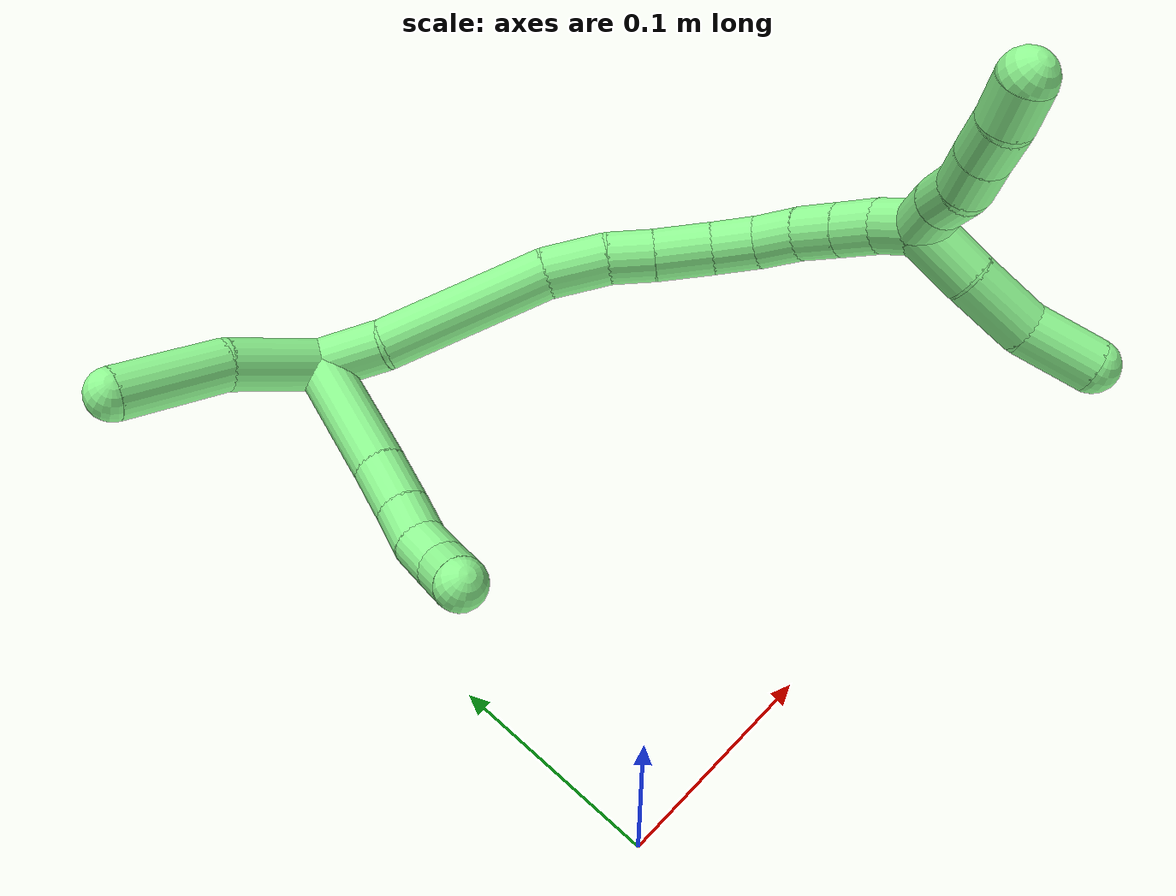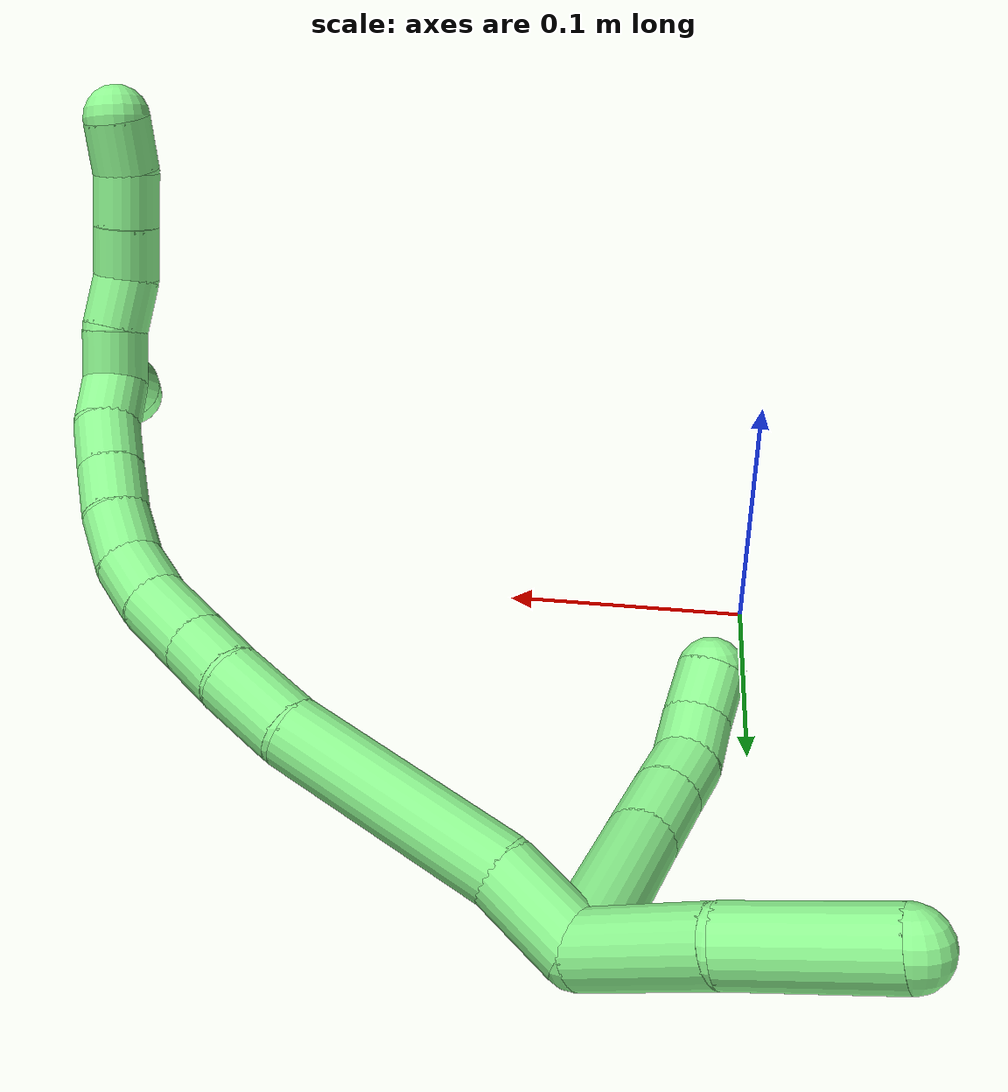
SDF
<sdf version="1.7">
 <world name="default">
  <model name="13">
   <static>0</static>
   <link name="13">
    <collision name="collision-cylinder-e_1_2_8">
     <pose>-0.006195 -0.030461 0.0069 1.34803 -0.195816 -0.1566</pose>
     <geometry><cylinder><radius>0.0125</radius><length>0.063682</length></cylinder></geometry>
     <surface>
      <friction><ode><mu>1.16</mu><mu2>1.16</mu2><slip1>0</slip1><slip2>0</slip2></ode></friction>
      <contact><ode><kp>1e+06</kp><kd>1</kd><max_vel>0</max_vel><min_depth>0.001</min_depth></ode></contact>
     </surface>
    </collision>
    <visual name="visual-cylinder-e_1_2_8">
     <pose>-0.006195 -0.030461 0.0069 1.34803 -0.195816 -0.1566</pose>
     <geometry><cylinder><radius>0.0125</radius><length>0.063682</length></cylinder></geometry>
     <material><ambient>0.564706 0.984314 0.572549 1</ambient></material>
    </visual>
    <collision name="collision-cylinder-e_2_8_9">
     <pose>-0.015603 -0.072869 0.017757 1.25099 -0.249906 -0.180942</pose>
     <geometry><cylinder><radius>0.0125</radius><length>0.025977</length></cylinder></geometry>
     <surface>
      <friction><ode><mu>1.16</mu><mu2>1.16</mu2><slip1>0</slip1><slip2>0</slip2></ode></friction>
      <contact><ode><kp>1e+06</kp><kd>1</kd><max_vel>0</max_vel><min_depth>0.001</min_depth></ode></contact>
     </surface>
    </collision>
    <visual name="visual-cylinder-e_2_8_9">
     <pose>-0.015603 -0.072869 0.017757 1.25099 -0.249906 -0.180942</pose>
     <geometry><cylinder><radius>0.0125</radius><length>0.025977</length></cylinder></geometry>
     <material><ambient>0.564706 0.984314 0.572549 1</ambient></material>
    </visual>
    <collision name="collision-cylinder-e_3_9_10">
     <pose>-0.021574 -0.09392 0.024967 1.22759 -0.277975 -0.196494</pose>
     <geometry><cylinder><radius>0.0125</radius><length>0.020107</length></cylinder></geometry>
     <surface>
      <friction><ode><mu>1.16</mu><mu2>1.16</mu2><slip1>0</slip1><slip2>0</slip2></ode></friction>
      <contact><ode><kp>1e+06</kp><kd>1</kd><max_vel>0</max_vel><min_depth>0.001</min_depth></ode></contact>
     </surface>
    </collision>
    <visual name="visual-cylinder-e_3_9_10">
     <pose>-0.021574 -0.09392 0.024967 1.22759 -0.277975 -0.196494</pose>
     <geometry><cylinder><radius>0.0125</radius><length>0.020107</length></cylinder></geometry>
     <material><ambient>0.564706 0.984314 0.572549 1</ambient></material>
    </visual>
    <collision name="collision-cylinder-e_4_10_11">
     <pose>-0.025689 -0.111286 0.033893 0.969077 -0.134482 -0.070867</pose>
     <geometry><cylinder><radius>0.0125</radius><length>0.020227</length></cylinder></geometry>
     <surface>
      <friction><ode><mu>1.16</mu><mu2>1.16</mu2><slip1>0</slip1><slip2>0</slip2></ode></friction>
      <contact><ode><kp>1e+06</kp><kd>1</kd><max_vel>0</max_vel><min_depth>0.001</min_depth></ode></contact>
     </surface>
    </collision>
    <visual name="visual-cylinder-e_4_10_11">
     <pose>-0.025689 -0.111286 0.033893 0.969077 -0.134482 -0.070867</pose>
     <geometry><cylinder><radius>0.0125</radius><length>0.020227</length></cylinder></geometry>
     <material><ambient>0.564706 0.984314 0.572549 1</ambient></material>
    </visual>
    <collision name="collision-cylinder-e_5_11_6">
     <pose>-0.029486 -0.125384 0.047315 0.645488 -0.246527 -0.082821</pose>
     <geometry><cylinder><radius>0.0125</radius><length>0.020006</length></cylinder></geometry>
     <surface>
      <friction><ode><mu>1.16</mu><mu2>1.16</mu2><slip1>0</slip1><slip2>0</slip2></ode></friction>
      <contact><ode><kp>1e+06</kp><kd>1</kd><max_vel>0</max_vel><min_depth>0.001</min_depth></ode></contact>
     </surface>
    </collision>
    <visual name="visual-cylinder-e_5_11_6">
     <pose>-0.029486 -0.125384 0.047315 0.645488 -0.246527 -0.082821</pose>
     <geometry><cylinder><radius>0.0125</radius><length>0.020006</length></cylinder></geometry>
     <material><ambient>0.564706 0.984314 0.572549 1</ambient></material>
    </visual>
    <collision name="collision-cylinder-e_1_2_12">
     <pose>-0.021177 0.008958 0.005012 -1.06071 -1.11944 0.704204</pose>
     <geometry><cylinder><radius>0.0125</radius><length>0.047068</length></cylinder></geometry>
     <surface>
      <friction><ode><mu>1.16</mu><mu2>1.16</mu2><slip1>0</slip1><slip2>0</slip2></ode></friction>
      <contact><ode><kp>1e+06</kp><kd>1</kd><max_vel>0</max_vel><min_depth>0.001</min_depth></ode></contact>
     </surface>
    </collision>
    <visual name="visual-cylinder-e_1_2_12">
     <pose>-0.021177 0.008958 0.005012 -1.06071 -1.11944 0.704204</pose>
     <geometry><cylinder><radius>0.0125</radius><length>0.047068</length></cylinder></geometry>
     <material><ambient>0.564706 0.984314 0.572549 1</ambient></material>
    </visual>
    <collision name="collision-cylinder-e_2_12_5">
     <pose>-0.068257 0.022702 0.01259 -1.07852 -1.36418 0.904763</pose>
     <geometry><cylinder><radius>0.0125</radius><length>0.052932</length></cylinder></geometry>
     <surface>
      <friction><ode><mu>1.16</mu><mu2>1.16</mu2><slip1>0</slip1><slip2>0</slip2></ode></friction>
      <contact><ode><kp>1e+06</kp><kd>1</kd><max_vel>0</max_vel><min_depth>0.001</min_depth></ode></contact>
     </surface>
    </collision>
    <visual name="visual-cylinder-e_2_12_5">
     <pose>-0.068257 0.022702 0.01259 -1.07852 -1.36418 0.904763</pose>
     <geometry><cylinder><radius>0.0125</radius><length>0.052932</length></cylinder></geometry>
     <material><ambient>0.564706 0.984314 0.572549 1</ambient></material>
    </visual>
    <collision name="collision-cylinder-e_1_2_13">
     <pose>0.012204 -0.006092 0.009444 0.572862 0.826562 0.256903</pose>
     <geometry><cylinder><radius>0.0125</radius><length>0.03318</length></cylinder></geometry>
     <surface>
      <friction><ode><mu>1.16</mu><mu2>1.16</mu2><slip1>0</slip1><slip2>0</slip2></ode></friction>
      <contact><ode><kp>1e+06</kp><kd>1</kd><max_vel>0</max_vel><min_depth>0.001</min_depth></ode></contact>
     </surface>
    </collision>
    <visual name="visual-cylinder-e_1_2_13">
     <pose>0.012204 -0.006092 0.009444 0.572862 0.826562 0.256903</pose>
     <geometry><cylinder><radius>0.0125</radius><length>0.03318</length></cylinder></geometry>
     <material><ambient>0.564706 0.984314 0.572549 1</ambient></material>
    </visual>
    <collision name="collision-cylinder-e_2_13_14">
     <pose>0.060242 -0.021534 0.038111 0.452741 1.03294 0.260112</pose>
     <geometry><cylinder><radius>0.0125</radius><length>0.083452</length></cylinder></geometry>
     <surface>
      <friction><ode><mu>1.16</mu><mu2>1.16</mu2><slip1>0</slip1><slip2>0</slip2></ode></friction>
      <contact><ode><kp>1e+06</kp><kd>1</kd><max_vel>0</max_vel><min_depth>0.001</min_depth></ode></contact>
     </surface>
    </collision>
    <visual name="visual-cylinder-e_2_13_14">
     <pose>0.060242 -0.021534 0.038111 0.452741 1.03294 0.260112</pose>
     <geometry><cylinder><radius>0.0125</radius><length>0.083452</length></cylinder></geometry>
     <material><ambient>0.564706 0.984314 0.572549 1</ambient></material>
    </visual>
    <collision name="collision-cylinder-e_3_14_15">
     <pose>0.107959 -0.03714 0.064525 0.715888 0.894687 0.355152</pose>
     <geometry><cylinder><radius>0.0125</radius><length>0.030467</length></cylinder></geometry>
     <surface>
      <friction><ode><mu>1.16</mu><mu2>1.16</mu2><slip1>0</slip1><slip2>0</slip2></ode></friction>
      <contact><ode><kp>1e+06</kp><kd>1</kd><max_vel>0</max_vel><min_depth>0.001</min_depth></ode></contact>
     </surface>
    </collision>
    <visual name="visual-cylinder-e_3_14_15">
     <pose>0.107959 -0.03714 0.064525 0.715888 0.894687 0.355152</pose>
     <geometry><cylinder><radius>0.0125</radius><length>0.030467</length></cylinder></geometry>
     <material><ambient>0.564706 0.984314 0.572549 1</ambient></material>
    </visual>
    <collision name="collision-cylinder-e_4_15_16">
     <pose>0.127831 -0.049511 0.076163 0.942159 0.812991 0.431668</pose>
     <geometry><cylinder><radius>0.0125</radius><length>0.021998</length></cylinder></geometry>
     <surface>
      <friction><ode><mu>1.16</mu><mu2>1.16</mu2><slip1>0</slip1><slip2>0</slip2></ode></friction>
      <contact><ode><kp>1e+06</kp><kd>1</kd><max_vel>0</max_vel><min_depth>0.001</min_depth></ode></contact>
     </surface>
    </collision>
    <visual name="visual-cylinder-e_4_15_16">
     <pose>0.127831 -0.049511 0.076163 0.942159 0.812991 0.431668</pose>
     <geometry><cylinder><radius>0.0125</radius><length>0.021998</length></cylinder></geometry>
     <material><ambient>0.564706 0.984314 0.572549 1</ambient></material>
    </visual>
    <collision name="collision-cylinder-e_5_16_17">
     <pose>0.146063 -0.062779 0.086721 0.863702 0.827806 0.399496</pose>
     <geometry><cylinder><radius>0.0125</radius><length>0.027817</length></cylinder></geometry>
     <surface>
      <friction><ode><mu>1.16</mu><mu2>1.16</mu2><slip1>0</slip1><slip2>0</slip2></ode></friction>
      <contact><ode><kp>1e+06</kp><kd>1</kd><max_vel>0</max_vel><min_depth>0.001</min_depth></ode></contact>
     </surface>
    </collision>
    <visual name="visual-cylinder-e_5_16_17">
     <pose>0.146063 -0.062779 0.086721 0.863702 0.827806 0.399496</pose>
     <geometry><cylinder><radius>0.0125</radius><length>0.027817</length></cylinder></geometry>
     <material><ambient>0.564706 0.984314 0.572549 1</ambient></material>
    </visual>
    <collision name="collision-cylinder-e_6_17_18">
     <pose>0.163095 -0.075714 0.099094 0.745666 0.672739 0.271834</pose>
     <geometry><cylinder><radius>0.0125</radius><length>0.021791</length></cylinder></geometry>
     <surface>
      <friction><ode><mu>1.16</mu><mu2>1.16</mu2><slip1>0</slip1><slip2>0</slip2></ode></friction>
      <contact><ode><kp>1e+06</kp><kd>1</kd><max_vel>0</max_vel><min_depth>0.001</min_depth></ode></contact>
     </surface>
    </collision>
    <visual name="visual-cylinder-e_6_17_18">
     <pose>0.163095 -0.075714 0.099094 0.745666 0.672739 0.271834</pose>
     <geometry><cylinder><radius>0.0125</radius><length>0.021791</length></cylinder></geometry>
     <material><ambient>0.564706 0.984314 0.572549 1</ambient></material>
    </visual>
    <collision name="collision-cylinder-e_7_18_19">
     <pose>0.174137 -0.086603 0.113509 0.559509 0.416129 0.121156</pose>
     <geometry><cylinder><radius>0.0125</radius><length>0.02104</length></cylinder></geometry>
     <surface>
      <friction><ode><mu>1.16</mu><mu2>1.16</mu2><slip1>0</slip1><slip2>0</slip2></ode></friction>
      <contact><ode><kp>1e+06</kp><kd>1</kd><max_vel>0</max_vel><min_depth>0.001</min_depth></ode></contact>
     </surface>
    </collision>
    <visual name="visual-cylinder-e_7_18_19">
     <pose>0.174137 -0.086603 0.113509 0.559509 0.416129 0.121156</pose>
     <geometry><cylinder><radius>0.0125</radius><length>0.02104</length></cylinder></geometry>
     <material><ambient>0.564706 0.984314 0.572549 1</ambient></material>
    </visual>
    <collision name="collision-cylinder-e_8_19_20">
     <pose>0.181274 -0.097353 0.129428 0.628553 0.291951 0.095506</pose>
     <geometry><cylinder><radius>0.0125</radius><length>0.020044</length></cylinder></geometry>
     <surface>
      <friction><ode><mu>1.16</mu><mu2>1.16</mu2><slip1>0</slip1><slip2>0</slip2></ode></friction>
      <contact><ode><kp>1e+06</kp><kd>1</kd><max_vel>0</max_vel><min_depth>0.001</min_depth></ode></contact>
     </surface>
    </collision>
    <visual name="visual-cylinder-e_8_19_20">
     <pose>0.181274 -0.097353 0.129428 0.628553 0.291951 0.095506</pose>
     <geometry><cylinder><radius>0.0125</radius><length>0.020044</length></cylinder></geometry>
     <material><ambient>0.564706 0.984314 0.572549 1</ambient></material>
    </visual>
    <collision name="collision-cylinder-e_9_20_21">
     <pose>0.186871 -0.108608 0.145079 0.618325 0.273223 0.087759</pose>
     <geometry><cylinder><radius>0.0125</radius><length>0.020106</length></cylinder></geometry>
     <surface>
      <friction><ode><mu>1.16</mu><mu2>1.16</mu2><slip1>0</slip1><slip2>0</slip2></ode></friction>
      <contact><ode><kp>1e+06</kp><kd>1</kd><max_vel>0</max_vel><min_depth>0.001</min_depth></ode></contact>
     </surface>
    </collision>
    <visual name="visual-cylinder-e_9_20_21">
     <pose>0.186871 -0.108608 0.145079 0.618325 0.273223 0.087759</pose>
     <geometry><cylinder><radius>0.0125</radius><length>0.020106</length></cylinder></geometry>
     <material><ambient>0.564706 0.984314 0.572549 1</ambient></material>
    </visual>
    <collision name="collision-cylinder-e_10_21_1">
     <pose>0.189897 -0.120287 0.160975 0.648427 0.031173 0.010477</pose>
     <geometry><cylinder><radius>0.0125</radius><length>0.020105</length></cylinder></geometry>
     <surface>
      <friction><ode><mu>1.16</mu><mu2>1.16</mu2><slip1>0</slip1><slip2>0</slip2></ode></friction>
      <contact><ode><kp>1e+06</kp><kd>1</kd><max_vel>0</max_vel><min_depth>0.001</min_depth></ode></contact>
     </surface>
    </collision>
    <visual name="visual-cylinder-e_10_21_1">
     <pose>0.189897 -0.120287 0.160975 0.648427 0.031173 0.010477</pose>
     <geometry><cylinder><radius>0.0125</radius><length>0.020105</length></cylinder></geometry>
     <material><ambient>0.564706 0.984314 0.572549 1</ambient></material>
    </visual>
    <collision name="collision-cylinder-e_1_1_22">
     <pose>0.194166 -0.141409 0.167471 1.67091 0.255763 0.2824</pose>
     <geometry><cylinder><radius>0.0125</radius><length>0.031276</length></cylinder></geometry>
     <surface>
      <friction><ode><mu>1.16</mu><mu2>1.16</mu2><slip1>0</slip1><slip2>0</slip2></ode></friction>
      <contact><ode><kp>1e+06</kp><kd>1</kd><max_vel>0</max_vel><min_depth>0.001</min_depth></ode></contact>
     </surface>
    </collision>
    <visual name="visual-cylinder-e_1_1_22">
     <pose>0.194166 -0.141409 0.167471 1.67091 0.255763 0.2824</pose>
     <geometry><cylinder><radius>0.0125</radius><length>0.031276</length></cylinder></geometry>
     <material><ambient>0.564706 0.984314 0.572549 1</ambient></material>
    </visual>
    <collision name="collision-cylinder-e_2_22_23">
     <pose>0.204138 -0.172259 0.163433 1.72936 0.359705 0.420111</pose>
     <geometry><cylinder><radius>0.0125</radius><length>0.034182</length></cylinder></geometry>
     <surface>
      <friction><ode><mu>1.16</mu><mu2>1.16</mu2><slip1>0</slip1><slip2>0</slip2></ode></friction>
      <contact><ode><kp>1e+06</kp><kd>1</kd><max_vel>0</max_vel><min_depth>0.001</min_depth></ode></contact>
     </surface>
    </collision>
    <visual name="visual-cylinder-e_2_22_23">
     <pose>0.204138 -0.172259 0.163433 1.72936 0.359705 0.420111</pose>
     <geometry><cylinder><radius>0.0125</radius><length>0.034182</length></cylinder></geometry>
     <material><ambient>0.564706 0.984314 0.572549 1</ambient></material>
    </visual>
    <collision name="collision-cylinder-e_3_23_4">
     <pose>0.21744 -0.203631 0.162515 1.46793 0.435499 0.394007</pose>
     <geometry><cylinder><radius>0.0125</radius><length>0.034542</length></cylinder></geometry>
     <surface>
      <friction><ode><mu>1.16</mu><mu2>1.16</mu2><slip1>0</slip1><slip2>0</slip2></ode></friction>
      <contact><ode><kp>1e+06</kp><kd>1</kd><max_vel>0</max_vel><min_depth>0.001</min_depth></ode></contact>
     </surface>
    </collision>
    <visual name="visual-cylinder-e_3_23_4">
     <pose>0.21744 -0.203631 0.162515 1.46793 0.435499 0.394007</pose>
     <geometry><cylinder><radius>0.0125</radius><length>0.034542</length></cylinder></geometry>
     <material><ambient>0.564706 0.984314 0.572549 1</ambient></material>
    </visual>
    <collision name="collision-cylinder-e_1_1_24">
     <pose>0.18937 -0.126046 0.178943 -0.031038 -0.084159 0.001307</pose>
     <geometry><cylinder><radius>0.0125</radius><length>0.02</length></cylinder></geometry>
     <surface>
      <friction><ode><mu>1.16</mu><mu2>1.16</mu2><slip1>0</slip1><slip2>0</slip2></ode></friction>
      <contact><ode><kp>1e+06</kp><kd>1</kd><max_vel>0</max_vel><min_depth>0.001</min_depth></ode></contact>
     </surface>
    </collision>
    <visual name="visual-cylinder-e_1_1_24">
     <pose>0.18937 -0.126046 0.178943 -0.031038 -0.084159 0.001307</pose>
     <geometry><cylinder><radius>0.0125</radius><length>0.02</length></cylinder></geometry>
     <material><ambient>0.564706 0.984314 0.572549 1</ambient></material>
    </visual>
    <collision name="collision-cylinder-e_2_24_25">
     <pose>0.186102 -0.127229 0.198488 0.154438 -0.245159 -0.019064</pose>
     <geometry><cylinder><radius>0.0125</radius><length>0.02</length></cylinder></geometry>
     <surface>
      <friction><ode><mu>1.16</mu><mu2>1.16</mu2><slip1>0</slip1><slip2>0</slip2></ode></friction>
      <contact><ode><kp>1e+06</kp><kd>1</kd><max_vel>0</max_vel><min_depth>0.001</min_depth></ode></contact>
     </surface>
    </collision>
    <visual name="visual-cylinder-e_2_24_25">
     <pose>0.186102 -0.127229 0.198488 0.154438 -0.245159 -0.019064</pose>
     <geometry><cylinder><radius>0.0125</radius><length>0.02</length></cylinder></geometry>
     <material><ambient>0.564706 0.984314 0.572549 1</ambient></material>
    </visual>
    <collision name="collision-cylinder-e_3_25_26">
     <pose>0.182231 -0.127027 0.217823 -0.172076 -0.14484 0.012514</pose>
     <geometry><cylinder><radius>0.0125</radius><length>0.02</length></cylinder></geometry>
     <surface>
      <friction><ode><mu>1.16</mu><mu2>1.16</mu2><slip1>0</slip1><slip2>0</slip2></ode></friction>
      <contact><ode><kp>1e+06</kp><kd>1</kd><max_vel>0</max_vel><min_depth>0.001</min_depth></ode></contact>
     </surface>
    </collision>
    <visual name="visual-cylinder-e_3_25_26">
     <pose>0.182231 -0.127027 0.217823 -0.172076 -0.14484 0.012514</pose>
     <geometry><cylinder><radius>0.0125</radius><length>0.02</length></cylinder></geometry>
     <material><ambient>0.564706 0.984314 0.572549 1</ambient></material>
    </visual>
    <collision name="collision-cylinder-e_4_26_27">
     <pose>0.179471 -0.123902 0.237381 -0.144798 -0.13211 0.009595</pose>
     <geometry><cylinder><radius>0.0125</radius><length>0.02</length></cylinder></geometry>
     <surface>
      <friction><ode><mu>1.16</mu><mu2>1.16</mu2><slip1>0</slip1><slip2>0</slip2></ode></friction>
      <contact><ode><kp>1e+06</kp><kd>1</kd><max_vel>0</max_vel><min_depth>0.001</min_depth></ode></contact>
     </surface>
    </collision>
    <visual name="visual-cylinder-e_4_26_27">
     <pose>0.179471 -0.123902 0.237381 -0.144798 -0.13211 0.009595</pose>
     <geometry><cylinder><radius>0.0125</radius><length>0.02</length></cylinder></geometry>
     <material><ambient>0.564706 0.984314 0.572549 1</ambient></material>
    </visual>
    <collision name="collision-cylinder-e_5_27_3">
     <pose>0.17816 -0.119648 0.256783 -0.286314 0.000628 -9.1e-05</pose>
     <geometry><cylinder><radius>0.0125</radius><length>0.02</length></cylinder></geometry>
     <surface>
      <friction><ode><mu>1.16</mu><mu2>1.16</mu2><slip1>0</slip1><slip2>0</slip2></ode></friction>
      <contact><ode><kp>1e+06</kp><kd>1</kd><max_vel>0</max_vel><min_depth>0.001</min_depth></ode></contact>
     </surface>
    </collision>
    <visual name="visual-cylinder-e_5_27_3">
     <pose>0.17816 -0.119648 0.256783 -0.286314 0.000628 -9.1e-05</pose>
     <geometry><cylinder><radius>0.0125</radius><length>0.02</length></cylinder></geometry>
     <material><ambient>0.564706 0.984314 0.572549 1</ambient></material>
    </visual>
    <collision name="collision-sphere-3">
     <pose>0.178166 -0.116823 0.266376 0 -0 0</pose>
     <geometry><sphere><radius>0.0125</radius></sphere></geometry>
     <surface>
      <friction><ode><mu>1.16</mu><mu2>1.16</mu2><slip1>0</slip1><slip2>0</slip2></ode></friction>
      <contact><ode><kp>1e+06</kp><kd>1</kd><max_vel>0</max_vel><min_depth>0.001</min_depth></ode></contact>
     </surface>
    </collision>
    <visual name="visual-sphere-3">
     <pose>0.178166 -0.116823 0.266376 0 -0 0</pose>
     <geometry><sphere><radius>0.0125</radius></sphere></geometry>
     <material><ambient>0.564706 0.984314 0.572549 1</ambient></material>
    </visual>
    <collision name="collision-sphere-27">
     <pose>0.178154 -0.122472 0.247191 0 -0 0</pose>
     <geometry><sphere><radius>0.0125</radius></sphere></geometry>
     <surface>
      <friction><ode><mu>1.16</mu><mu2>1.16</mu2><slip1>0</slip1><slip2>0</slip2></ode></friction>
      <contact><ode><kp>1e+06</kp><kd>1</kd><max_vel>0</max_vel><min_depth>0.001</min_depth></ode></contact>
     </surface>
    </collision>
    <visual name="visual-sphere-27">
     <pose>0.178154 -0.122472 0.247191 0 -0 0</pose>
     <geometry><sphere><radius>0.0125</radius></sphere></geometry>
     <material><ambient>0.564706 0.984314 0.572549 1</ambient></material>
    </visual>
    <collision name="collision-sphere-26">
     <pose>0.180788 -0.125333 0.227572 0 -0 0</pose>
     <geometry><sphere><radius>0.0125</radius></sphere></geometry>
     <surface>
      <friction><ode><mu>1.16</mu><mu2>1.16</mu2><slip1>0</slip1><slip2>0</slip2></ode></friction>
      <contact><ode><kp>1e+06</kp><kd>1</kd><max_vel>0</max_vel><min_depth>0.001</min_depth></ode></contact>
     </surface>
    </collision>
    <visual name="visual-sphere-26">
     <pose>0.180788 -0.125333 0.227572 0 -0 0</pose>
     <geometry><sphere><radius>0.0125</radius></sphere></geometry>
     <material><ambient>0.564706 0.984314 0.572549 1</ambient></material>
    </visual>
    <collision name="collision-sphere-25">
     <pose>0.183675 -0.128721 0.208074 0 -0 0</pose>
     <geometry><sphere><radius>0.0125</radius></sphere></geometry>
     <surface>
      <friction><ode><mu>1.16</mu><mu2>1.16</mu2><slip1>0</slip1><slip2>0</slip2></ode></friction>
      <contact><ode><kp>1e+06</kp><kd>1</kd><max_vel>0</max_vel><min_depth>0.001</min_depth></ode></contact>
     </surface>
    </collision>
    <visual name="visual-sphere-25">
     <pose>0.183675 -0.128721 0.208074 0 -0 0</pose>
     <geometry><sphere><radius>0.0125</radius></sphere></geometry>
     <material><ambient>0.564706 0.984314 0.572549 1</ambient></material>
    </visual>
    <collision name="collision-sphere-24">
     <pose>0.188529 -0.125737 0.188903 0 -0 0</pose>
     <geometry><sphere><radius>0.0125</radius></sphere></geometry>
     <surface>
      <friction><ode><mu>1.16</mu><mu2>1.16</mu2><slip1>0</slip1><slip2>0</slip2></ode></friction>
      <contact><ode><kp>1e+06</kp><kd>1</kd><max_vel>0</max_vel><min_depth>0.001</min_depth></ode></contact>
     </surface>
    </collision>
    <visual name="visual-sphere-24">
     <pose>0.188529 -0.125737 0.188903 0 -0 0</pose>
     <geometry><sphere><radius>0.0125</radius></sphere></geometry>
     <material><ambient>0.564706 0.984314 0.572549 1</ambient></material>
    </visual>
    <collision name="collision-sphere-4">
     <pose>0.224727 -0.219208 0.164123 0 -0 0</pose>
     <geometry><sphere><radius>0.0125</radius></sphere></geometry>
     <surface>
      <friction><ode><mu>1.16</mu><mu2>1.16</mu2><slip1>0</slip1><slip2>0</slip2></ode></friction>
      <contact><ode><kp>1e+06</kp><kd>1</kd><max_vel>0</max_vel><min_depth>0.001</min_depth></ode></contact>
     </surface>
    </collision>
    <visual name="visual-sphere-4">
     <pose>0.224727 -0.219208 0.164123 0 -0 0</pose>
     <geometry><sphere><radius>0.0125</radius></sphere></geometry>
     <material><ambient>0.564706 0.984314 0.572549 1</ambient></material>
    </visual>
    <collision name="collision-sphere-23">
     <pose>0.210154 -0.188055 0.160907 0 -0 0</pose>
     <geometry><sphere><radius>0.0125</radius></sphere></geometry>
     <surface>
      <friction><ode><mu>1.16</mu><mu2>1.16</mu2><slip1>0</slip1><slip2>0</slip2></ode></friction>
      <contact><ode><kp>1e+06</kp><kd>1</kd><max_vel>0</max_vel><min_depth>0.001</min_depth></ode></contact>
     </surface>
    </collision>
    <visual name="visual-sphere-23">
     <pose>0.210154 -0.188055 0.160907 0 -0 0</pose>
     <geometry><sphere><radius>0.0125</radius></sphere></geometry>
     <material><ambient>0.564706 0.984314 0.572549 1</ambient></material>
    </visual>
    <collision name="collision-sphere-22">
     <pose>0.198122 -0.156462 0.165959 0 -0 0</pose>
     <geometry><sphere><radius>0.0125</radius></sphere></geometry>
     <surface>
      <friction><ode><mu>1.16</mu><mu2>1.16</mu2><slip1>0</slip1><slip2>0</slip2></ode></friction>
      <contact><ode><kp>1e+06</kp><kd>1</kd><max_vel>0</max_vel><min_depth>0.001</min_depth></ode></contact>
     </surface>
    </collision>
    <visual name="visual-sphere-22">
     <pose>0.198122 -0.156462 0.165959 0 -0 0</pose>
     <geometry><sphere><radius>0.0125</radius></sphere></geometry>
     <material><ambient>0.564706 0.984314 0.572549 1</ambient></material>
    </visual>
    <collision name="collision-sphere-1">
     <pose>0.19021 -0.126355 0.168983 0 -0 0</pose>
     <geometry><sphere><radius>0.0125</radius></sphere></geometry>
     <surface>
      <friction><ode><mu>1.16</mu><mu2>1.16</mu2><slip1>0</slip1><slip2>0</slip2></ode></friction>
      <contact><ode><kp>1e+06</kp><kd>1</kd><max_vel>0</max_vel><min_depth>0.001</min_depth></ode></contact>
     </surface>
    </collision>
    <visual name="visual-sphere-1">
     <pose>0.19021 -0.126355 0.168983 0 -0 0</pose>
     <geometry><sphere><radius>0.0125</radius></sphere></geometry>
     <material><ambient>0.564706 0.984314 0.572549 1</ambient></material>
    </visual>
    <collision name="collision-sphere-21">
     <pose>0.189584 -0.114219 0.152967 0 -0 0</pose>
     <geometry><sphere><radius>0.0125</radius></sphere></geometry>
     <surface>
      <friction><ode><mu>1.16</mu><mu2>1.16</mu2><slip1>0</slip1><slip2>0</slip2></ode></friction>
      <contact><ode><kp>1e+06</kp><kd>1</kd><max_vel>0</max_vel><min_depth>0.001</min_depth></ode></contact>
     </surface>
    </collision>
    <visual name="visual-sphere-21">
     <pose>0.189584 -0.114219 0.152967 0 -0 0</pose>
     <geometry><sphere><radius>0.0125</radius></sphere></geometry>
     <material><ambient>0.564706 0.984314 0.572549 1</ambient></material>
    </visual>
    <collision name="collision-sphere-6">
     <pose>-0.031927 -0.131219 0.055064 0 -0 0</pose>
     <geometry><sphere><radius>0.0125</radius></sphere></geometry>
     <surface>
      <friction><ode><mu>1.16</mu><mu2>1.16</mu2><slip1>0</slip1><slip2>0</slip2></ode></friction>
      <contact><ode><kp>1e+06</kp><kd>1</kd><max_vel>0</max_vel><min_depth>0.001</min_depth></ode></contact>
     </surface>
    </collision>
    <visual name="visual-sphere-6">
     <pose>-0.031927 -0.131219 0.055064 0 -0 0</pose>
     <geometry><sphere><radius>0.0125</radius></sphere></geometry>
     <material><ambient>0.564706 0.984314 0.572549 1</ambient></material>
    </visual>
    <collision name="collision-sphere-11">
     <pose>-0.027045 -0.119548 0.039567 0 -0 0</pose>
     <geometry><sphere><radius>0.0125</radius></sphere></geometry>
     <surface>
      <friction><ode><mu>1.16</mu><mu2>1.16</mu2><slip1>0</slip1><slip2>0</slip2></ode></friction>
      <contact><ode><kp>1e+06</kp><kd>1</kd><max_vel>0</max_vel><min_depth>0.001</min_depth></ode></contact>
     </surface>
    </collision>
    <visual name="visual-sphere-11">
     <pose>-0.027045 -0.119548 0.039567 0 -0 0</pose>
     <geometry><sphere><radius>0.0125</radius></sphere></geometry>
     <material><ambient>0.564706 0.984314 0.572549 1</ambient></material>
    </visual>
    <collision name="collision-sphere-10">
     <pose>-0.024333 -0.103024 0.02822 0 -0 0</pose>
     <geometry><sphere><radius>0.0125</radius></sphere></geometry>
     <surface>
      <friction><ode><mu>1.16</mu><mu2>1.16</mu2><slip1>0</slip1><slip2>0</slip2></ode></friction>
      <contact><ode><kp>1e+06</kp><kd>1</kd><max_vel>0</max_vel><min_depth>0.001</min_depth></ode></contact>
     </surface>
    </collision>
    <visual name="visual-sphere-10">
     <pose>-0.024333 -0.103024 0.02822 0 -0 0</pose>
     <geometry><sphere><radius>0.0125</radius></sphere></geometry>
     <material><ambient>0.564706 0.984314 0.572549 1</ambient></material>
    </visual>
    <collision name="collision-sphere-9">
     <pose>-0.018815 -0.084816 0.021714 0 -0 0</pose>
     <geometry><sphere><radius>0.0125</radius></sphere></geometry>
     <surface>
      <friction><ode><mu>1.16</mu><mu2>1.16</mu2><slip1>0</slip1><slip2>0</slip2></ode></friction>
      <contact><ode><kp>1e+06</kp><kd>1</kd><max_vel>0</max_vel><min_depth>0.001</min_depth></ode></contact>
     </surface>
    </collision>
    <visual name="visual-sphere-9">
     <pose>-0.018815 -0.084816 0.021714 0 -0 0</pose>
     <geometry><sphere><radius>0.0125</radius></sphere></geometry>
     <material><ambient>0.564706 0.984314 0.572549 1</ambient></material>
    </visual>
    <collision name="collision-sphere-2">
     <geometry><sphere><radius>0.0125</radius></sphere></geometry>
     <surface>
      <friction><ode><mu>1.16</mu><mu2>1.16</mu2><slip1>0</slip1><slip2>0</slip2></ode></friction>
      <contact><ode><kp>1e+06</kp><kd>1</kd><max_vel>0</max_vel><min_depth>0.001</min_depth></ode></contact>
     </surface>
    </collision>
    <visual name="visual-sphere-2">
     <geometry><sphere><radius>0.0125</radius></sphere></geometry>
     <material><ambient>0.564706 0.984314 0.572549 1</ambient></material>
    </visual>
    <collision name="collision-sphere-19">
     <pose>0.178389 -0.09171 0.121665 0 -0 0</pose>
     <geometry><sphere><radius>0.0125</radius></sphere></geometry>
     <surface>
      <friction><ode><mu>1.16</mu><mu2>1.16</mu2><slip1>0</slip1><slip2>0</slip2></ode></friction>
      <contact><ode><kp>1e+06</kp><kd>1</kd><max_vel>0</max_vel><min_depth>0.001</min_depth></ode></contact>
     </surface>
    </collision>
    <visual name="visual-sphere-19">
     <pose>0.178389 -0.09171 0.121665 0 -0 0</pose>
     <geometry><sphere><radius>0.0125</radius></sphere></geometry>
     <material><ambient>0.564706 0.984314 0.572549 1</ambient></material>
    </visual>
    <collision name="collision-sphere-8">
     <pose>-0.01239 -0.060922 0.0138 0 -0 0</pose>
     <geometry><sphere><radius>0.0125</radius></sphere></geometry>
     <surface>
      <friction><ode><mu>1.16</mu><mu2>1.16</mu2><slip1>0</slip1><slip2>0</slip2></ode></friction>
      <contact><ode><kp>1e+06</kp><kd>1</kd><max_vel>0</max_vel><min_depth>0.001</min_depth></ode></contact>
     </surface>
    </collision>
    <visual name="visual-sphere-8">
     <pose>-0.01239 -0.060922 0.0138 0 -0 0</pose>
     <geometry><sphere><radius>0.0125</radius></sphere></geometry>
     <material><ambient>0.564706 0.984314 0.572549 1</ambient></material>
    </visual>
    <collision name="collision-sphere-12">
     <pose>-0.042354 0.017917 0.010024 0 -0 0</pose>
     <geometry><sphere><radius>0.0125</radius></sphere></geometry>
     <surface>
      <friction><ode><mu>1.16</mu><mu2>1.16</mu2><slip1>0</slip1><slip2>0</slip2></ode></friction>
      <contact><ode><kp>1e+06</kp><kd>1</kd><max_vel>0</max_vel><min_depth>0.001</min_depth></ode></contact>
     </surface>
    </collision>
    <visual name="visual-sphere-12">
     <pose>-0.042354 0.017917 0.010024 0 -0 0</pose>
     <geometry><sphere><radius>0.0125</radius></sphere></geometry>
     <material><ambient>0.564706 0.984314 0.572549 1</ambient></material>
    </visual>
    <collision name="collision-sphere-5">
     <pose>-0.094161 0.027486 0.015156 0 -0 0</pose>
     <geometry><sphere><radius>0.0125</radius></sphere></geometry>
     <surface>
      <friction><ode><mu>1.16</mu><mu2>1.16</mu2><slip1>0</slip1><slip2>0</slip2></ode></friction>
      <contact><ode><kp>1e+06</kp><kd>1</kd><max_vel>0</max_vel><min_depth>0.001</min_depth></ode></contact>
     </surface>
    </collision>
    <visual name="visual-sphere-5">
     <pose>-0.094161 0.027486 0.015156 0 -0 0</pose>
     <geometry><sphere><radius>0.0125</radius></sphere></geometry>
     <material><ambient>0.564706 0.984314 0.572549 1</ambient></material>
    </visual>
    <collision name="collision-sphere-13">
     <pose>0.024408 -0.012183 0.018888 0 -0 0</pose>
     <geometry><sphere><radius>0.0125</radius></sphere></geometry>
     <surface>
      <friction><ode><mu>1.16</mu><mu2>1.16</mu2><slip1>0</slip1><slip2>0</slip2></ode></friction>
      <contact><ode><kp>1e+06</kp><kd>1</kd><max_vel>0</max_vel><min_depth>0.001</min_depth></ode></contact>
     </surface>
    </collision>
    <visual name="visual-sphere-13">
     <pose>0.024408 -0.012183 0.018888 0 -0 0</pose>
     <geometry><sphere><radius>0.0125</radius></sphere></geometry>
     <material><ambient>0.564706 0.984314 0.572549 1</ambient></material>
    </visual>
    <collision name="collision-sphere-14">
     <pose>0.096077 -0.030884 0.057333 0 -0 0</pose>
     <geometry><sphere><radius>0.0125</radius></sphere></geometry>
     <surface>
      <friction><ode><mu>1.16</mu><mu2>1.16</mu2><slip1>0</slip1><slip2>0</slip2></ode></friction>
      <contact><ode><kp>1e+06</kp><kd>1</kd><max_vel>0</max_vel><min_depth>0.001</min_depth></ode></contact>
     </surface>
    </collision>
    <visual name="visual-sphere-14">
     <pose>0.096077 -0.030884 0.057333 0 -0 0</pose>
     <geometry><sphere><radius>0.0125</radius></sphere></geometry>
     <material><ambient>0.564706 0.984314 0.572549 1</ambient></material>
    </visual>
    <collision name="collision-sphere-15">
     <pose>0.119841 -0.043397 0.071718 0 -0 0</pose>
     <geometry><sphere><radius>0.0125</radius></sphere></geometry>
     <surface>
      <friction><ode><mu>1.16</mu><mu2>1.16</mu2><slip1>0</slip1><slip2>0</slip2></ode></friction>
      <contact><ode><kp>1e+06</kp><kd>1</kd><max_vel>0</max_vel><min_depth>0.001</min_depth></ode></contact>
     </surface>
    </collision>
    <visual name="visual-sphere-15">
     <pose>0.119841 -0.043397 0.071718 0 -0 0</pose>
     <geometry><sphere><radius>0.0125</radius></sphere></geometry>
     <material><ambient>0.564706 0.984314 0.572549 1</ambient></material>
    </visual>
    <collision name="collision-sphere-16">
     <pose>0.13582 -0.055626 0.080609 0 -0 0</pose>
     <geometry><sphere><radius>0.0125</radius></sphere></geometry>
     <surface>
      <friction><ode><mu>1.16</mu><mu2>1.16</mu2><slip1>0</slip1><slip2>0</slip2></ode></friction>
      <contact><ode><kp>1e+06</kp><kd>1</kd><max_vel>0</max_vel><min_depth>0.001</min_depth></ode></contact>
     </surface>
    </collision>
    <visual name="visual-sphere-16">
     <pose>0.13582 -0.055626 0.080609 0 -0 0</pose>
     <geometry><sphere><radius>0.0125</radius></sphere></geometry>
     <material><ambient>0.564706 0.984314 0.572549 1</ambient></material>
    </visual>
    <collision name="collision-sphere-17">
     <pose>0.156306 -0.069933 0.092834 0 -0 0</pose>
     <geometry><sphere><radius>0.0125</radius></sphere></geometry>
     <surface>
      <friction><ode><mu>1.16</mu><mu2>1.16</mu2><slip1>0</slip1><slip2>0</slip2></ode></friction>
      <contact><ode><kp>1e+06</kp><kd>1</kd><max_vel>0</max_vel><min_depth>0.001</min_depth></ode></contact>
     </surface>
    </collision>
    <visual name="visual-sphere-17">
     <pose>0.156306 -0.069933 0.092834 0 -0 0</pose>
     <geometry><sphere><radius>0.0125</radius></sphere></geometry>
     <material><ambient>0.564706 0.984314 0.572549 1</ambient></material>
    </visual>
    <collision name="collision-sphere-18">
     <pose>0.169884 -0.081496 0.105354 0 -0 0</pose>
     <geometry><sphere><radius>0.0125</radius></sphere></geometry>
     <surface>
      <friction><ode><mu>1.16</mu><mu2>1.16</mu2><slip1>0</slip1><slip2>0</slip2></ode></friction>
      <contact><ode><kp>1e+06</kp><kd>1</kd><max_vel>0</max_vel><min_depth>0.001</min_depth></ode></contact>
     </surface>
    </collision>
    <visual name="visual-sphere-18">
     <pose>0.169884 -0.081496 0.105354 0 -0 0</pose>
     <geometry><sphere><radius>0.0125</radius></sphere></geometry>
     <material><ambient>0.564706 0.984314 0.572549 1</ambient></material>
    </visual>
    <collision name="collision-sphere-20">
     <pose>0.184158 -0.102997 0.137191 0 -0 0</pose>
     <geometry><sphere><radius>0.0125</radius></sphere></geometry>
     <surface>
      <friction><ode><mu>1.16</mu><mu2>1.16</mu2><slip1>0</slip1><slip2>0</slip2></ode></friction>
      <contact><ode><kp>1e+06</kp><kd>1</kd><max_vel>0</max_vel><min_depth>0.001</min_depth></ode></contact>
     </surface>
    </collision>
    <visual name="visual-sphere-20">
     <pose>0.184158 -0.102997 0.137191 0 -0 0</pose>
     <geometry><sphere><radius>0.0125</radius></sphere></geometry>
     <material><ambient>0.564706 0.984314 0.572549 1</ambient></material>
    </visual>
    <inertial>
     <pose>0.087917 -0.072894 0.086675 0 -0 0</pose>
     <mass>0.75</mass>
     <inertia><ixx>0.000117</ixx><ixy>0</ixy><ixz>0</ixz><iyy>9.9e-05</iyy><iyz>0</iyz><izz>5.1e-05</izz></inertia>
    </inertial>
   </link>
   <pose>0.058684 0.259041 0.045544 0.382872 0.136379 -0.064148</pose>
  </model>
 </world>
</sdf>
